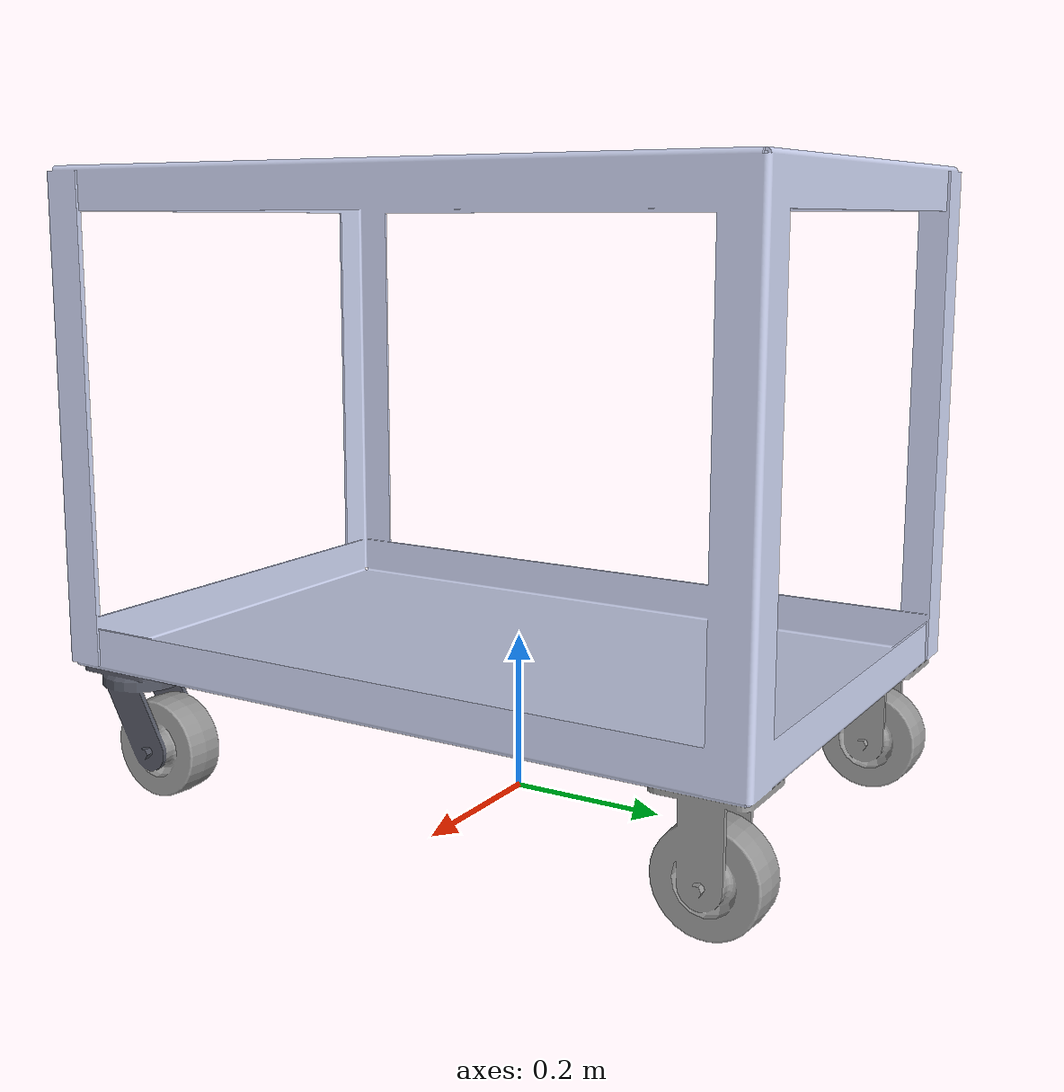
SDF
<?xml version='1.0'?>
<sdf version="1.6">

    <model name="robot_cart">
      <pose>0 0 0 0 0 0</pose>
      <static>true</static>
      <link name="link">

        <inertial>
        <!--NOTE: Uses wood density (i.e 2000 kg/m^3) to calculate the mass-->
        <mass>10</mass>
        <inertia>
          <ixx>4.369e-5</ixx>
          <ixy>0</ixy>
          <ixz>0</ixz>
          <iyy>4.028e-5</iyy>
          <iyz>0</iyz>
          <izz>1.407e-5</izz>
        </inertia>
        <pose>0 0 0 0 -0 0</pose>
        </inertial>
        <self_collide>0</self_collide>
        <kinematic>0</kinematic>
        <enable_wind>0</enable_wind>

        <visual name="visual">
          <geometry>
            <mesh>
                <uri>model://robot_cart/model.dae</uri>
                <scale>1 1 1</scale>
            </mesh>
          </geometry>
        </visual>

        <collision name='collision'>
          <laser_retro>1</laser_retro>
          <max_contacts>5</max_contacts>
          <pose>0 0 0 0 0 0</pose>
          <geometry>
            <mesh>
              <uri>model://robot_cart/model.dae</uri>
              <scale>1 1 1</scale>
            </mesh>
          </geometry>
        </collision>

      </link>
    </model>

</sdf>
